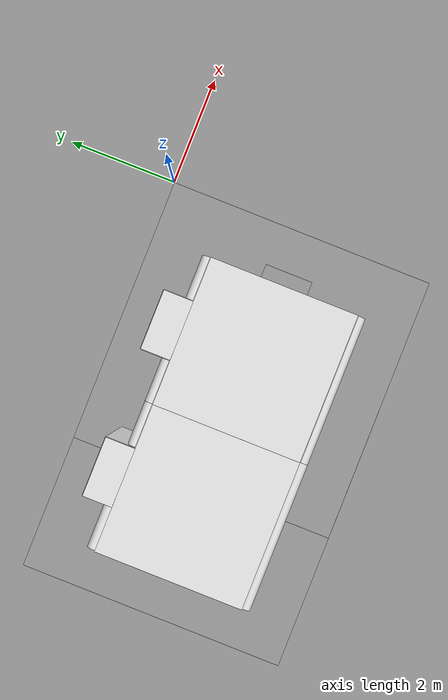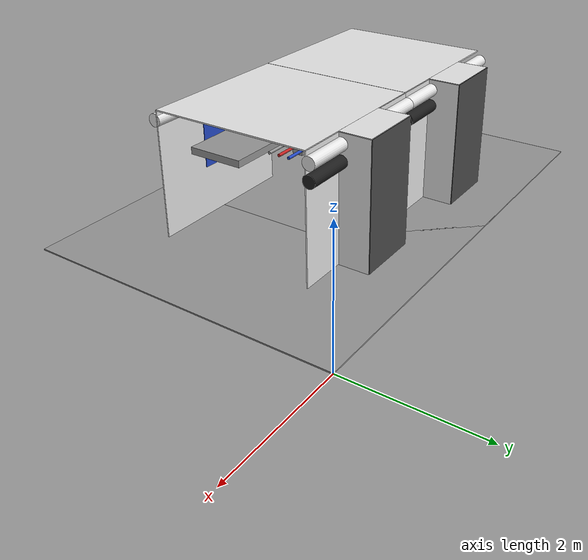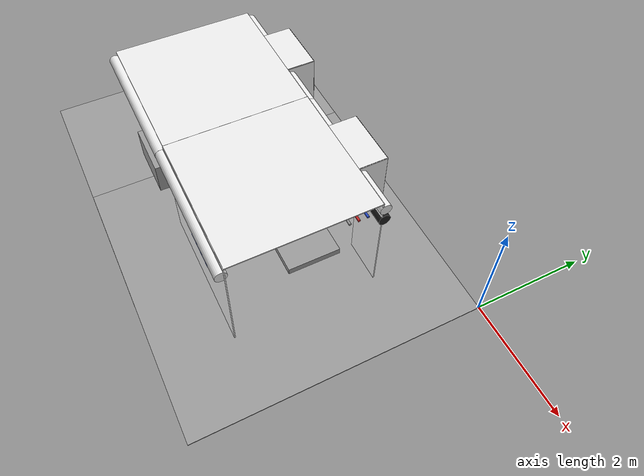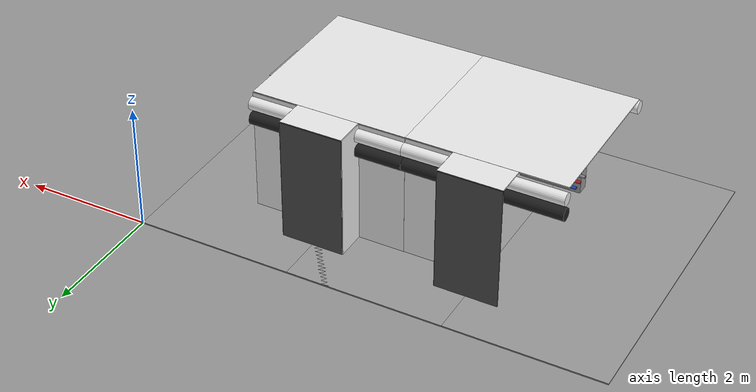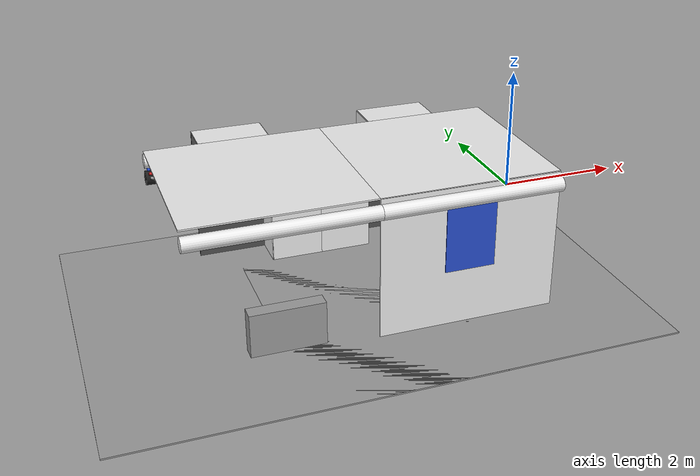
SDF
<sdf version="1.6">
 <world name="default">
  <model name="wall_left_-1_-1_0_1">
   <static>1</static>
   <pose>-2.5 -3.75 1.0 0.0 0.0 3.14</pose>
   <link name="link">
    <collision name="collision"><geometry><box><size>2.5 0.02 2.0</size></box></geometry></collision>
    <visual name="visual">
     <material>
      <script><name>Gazebo/White</name><uri>file://media/materials/scripts/gazebo.material</uri></script>
     </material>
     <geometry><box><size>2.5 0.02 2.0</size></box></geometry>
    </visual>
   </link>
  </model>
  <model name="wall_top_-1_-1_0_1">
   <static>1</static>
   <pose>-2.5 -2.5 2.0 1.57 0.0 1.57</pose>
   <link name="link">
    <collision name="collision"><geometry><box><size>2.5 0.02 2.5</size></box></geometry></collision>
    <visual name="visual">
     <material>
      <script><name>Gazebo/White</name><uri>file://media/materials/scripts/gazebo.material</uri></script>
     </material>
     <geometry><box><size>2.5 0.02 2.5</size></box></geometry>
    </visual>
   </link>
  </model>
  <model name="ceiling_1_-1_-1_0_1">
   <pose>-2.5 -2.5 1.7 0.0 0.0 1.57</pose>
   <link name="link_1">
    <visual name="visual">
     <geometry><box><size>0.8 1 0.1</size></box></geometry>
     <material>
      <script><uri>file://media/materials/scripts/gazebo.material</uri><name>Gazebo/Grey</name></script>
     </material>
    </visual>
    <collision name="collision"><geometry><box><size>0.8 1 0.1</size></box></geometry></collision>
   </link>
   <static>1</static>
  </model>
  <model name="ceiling_1_-1_-1_1_1">
   <pose>-1.5 -2.5 1.7 0.0 0.0 1.57</pose>
   <link name="link_1">
    <visual name="visual">
     <geometry><box><size>0.8 1 0.1</size></box></geometry>
     <material>
      <script><uri>file://media/materials/scripts/gazebo.material</uri><name>Gazebo/Grey</name></script>
     </material>
    </visual>
    <collision name="collision"><geometry><box><size>0.8 1 0.1</size></box></geometry></collision>
   </link>
   <static>1</static>
  </model>
  <model name="ceiling_1_-1_-1_2_1">
   <pose>-3.5 -2.5 1.7 0.0 0.0 1.57</pose>
   <link name="link_1">
    <visual name="visual">
     <geometry><box><size>0.8 1 0.1</size></box></geometry>
     <material>
      <script><uri>file://media/materials/scripts/gazebo.material</uri><name>Gazebo/Grey</name></script>
     </material>
    </visual>
    <collision name="collision"><geometry><box><size>0.8 1 0.1</size></box></geometry></collision>
   </link>
   <static>1</static>
  </model>
  <model name="white_pipe_left_-1_-1_0_1">
   <static>1</static>
   <pose>-2.5 -2.5 1.84 0.0 0.0 1.57</pose>
   <link name="link_0">
    <visual name="visual">
     <pose>-1.3 0 0 1.57 0 0</pose>
     <geometry><cylinder><radius>0.1</radius><length>2.5</length></cylinder></geometry>
     <material>
      <script><uri>file://media/materials/scripts/gazebo.material</uri><name>Gazebo/White</name></script>
     </material>
    </visual>
    <collision name="collision">
     <pose>-1.3 0 0 1.57 0 0</pose>
     <geometry><cylinder><radius>0.1</radius><length>2.5</length></cylinder></geometry>
    </collision>
   </link>
  </model>
  <model name="white_pipe_right_-1_-1_0_1">
   <static>1</static>
   <pose>-2.5 -2.5 1.84 0.0 0.0 1.57</pose>
   <link name="link_0">
    <visual name="visual">
     <pose>1.3 0 0 1.57 0 0</pose>
     <geometry><cylinder><radius>0.1</radius><length>2.5</length></cylinder></geometry>
     <material>
      <script><uri>file://media/materials/scripts/gazebo.material</uri><name>Gazebo/White</name></script>
     </material>
    </visual>
    <collision name="collision">
     <pose>1.3 0 0 1.57 0 0</pose>
     <geometry><cylinder><radius>0.1</radius><length>2.5</length></cylinder></geometry>
    </collision>
   </link>
  </model>
  <model name="black_pipe_right_-1_-1_0_1">
   <static>1</static>
   <pose>-2.5 -2.5 1.84 0.0 0.0 1.57</pose>
   <link name="link_0">
    <visual name="visual">
     <pose>1.3 0 -0.25 1.57 0 0</pose>
     <geometry><cylinder><radius>0.1</radius><length>2.5</length></cylinder></geometry>
     <material>
      <script><uri>file://media/materials/scripts/gazebo.material</uri><name>Gazebo/Black</name></script>
     </material>
    </visual>
    <collision name="collision">
     <pose>1.3 0 -0.25 1.57 0 0</pose>
     <geometry><cylinder><radius>0.1</radius><length>2.5</length></cylinder></geometry>
    </collision>
   </link>
  </model>
  <model name="grey_pipe_right_-1_-1_0_1">
   <static>1</static>
   <pose>-2.5 -2.5 1.84 0.0 0.0 1.57</pose>
   <link name="link_0">
    <visual name="visual">
     <pose>0.7 0 0 1.57 0 0</pose>
     <geometry><cylinder><radius>0.02</radius><length>2.5</length></cylinder></geometry>
     <material>
      <script><uri>file://media/materials/scripts/gazebo.material</uri><name>Gazebo/Grey</name></script>
     </material>
    </visual>
    <collision name="collision">
     <pose>0.7 0 0 1.57 0 0</pose>
     <geometry><cylinder><radius>0.02</radius><length>2.5</length></cylinder></geometry>
    </collision>
   </link>
  </model>
  <model name="red_pipe_right_-1_-1_0_1">
   <static>1</static>
   <pose>-2.5 -2.5 1.84 0.0 0.0 1.57</pose>
   <link name="link_0">
    <visual name="visual">
     <pose>0.85 0 0 1.57 0 0</pose>
     <geometry><cylinder><radius>0.02</radius><length>2.5</length></cylinder></geometry>
     <material>
      <script><uri>file://media/materials/scripts/gazebo.material</uri><name>Gazebo/Red</name></script>
     </material>
    </visual>
    <collision name="collision">
     <pose>0.85 0 0 1.57 0 0</pose>
     <geometry><cylinder><radius>0.02</radius><length>2.5</length></cylinder></geometry>
    </collision>
   </link>
  </model>
  <model name="blue_pipe_right_-1_-1_0_1">
   <static>1</static>
   <pose>-2.5 -2.5 1.84 0.0 0.0 1.57</pose>
   <link name="link_0">
    <visual name="visual">
     <pose>1 0 0 1.57 0 0</pose>
     <geometry><cylinder><radius>0.02</radius><length>2.5</length></cylinder></geometry>
     <material>
      <script><uri>file://media/materials/scripts/gazebo.material</uri><name>Gazebo/Blue</name></script>
     </material>
    </visual>
    <collision name="collision">
     <pose>1 0 0 1.57 0 0</pose>
     <geometry><cylinder><radius>0.02</radius><length>2.5</length></cylinder></geometry>
    </collision>
   </link>
  </model>
  <model name="panel_-1_-1_0_1">
   <static>1</static>
   <pose>-2.5 -3.75 1.3 0.0 0.0 1.57</pose>
   <link name="link">
    <collision name="collision"><geometry><box><size>0.04 0.7 1</size></box></geometry></collision>
    <visual name="visual">
     <material>
      <script><name>Gazebo/Blue</name><uri>file://media/materials/scripts/gazebo.material</uri></script>
     </material>
     <geometry><box><size>0.04 0.7 1</size></box></geometry>
    </visual>
   </link>
  </model>
  <model name="wall_right_front_left_-1_-1_0_1">
   <static>1</static>
   <pose>-3.375 -1.25 1.0 0.0 0.0 3.14</pose>
   <link name="link">
    <collision name="collision"><geometry><box><size>0.75 0.02 2.0</size></box></geometry></collision>
    <visual name="visual">
     <material>
      <script><name>Gazebo/White</name><uri>file://media/materials/scripts/gazebo.material</uri></script>
     </material>
     <geometry><box><size>0.75 0.02 2.0</size></box></geometry>
    </visual>
   </link>
  </model>
  <model name="wall_right_front_right_-1_-1_0_1">
   <static>1</static>
   <pose>-1.625 -1.25 1.0 0.0 0.0 3.14</pose>
   <link name="link">
    <collision name="collision"><geometry><box><size>0.75 0.02 2.0</size></box></geometry></collision>
    <visual name="visual">
     <material>
      <script><name>Gazebo/White</name><uri>file://media/materials/scripts/gazebo.material</uri></script>
     </material>
     <geometry><box><size>0.75 0.02 2.0</size></box></geometry>
    </visual>
   </link>
  </model>
  <model name="wall_right_front_up_-1_-1_0_1">
   <static>1</static>
   <pose>-2.5 -1.25 2.0 0.0 0.0 3.14</pose>
   <link name="link">
    <collision name="collision"><geometry><box><size>1.0 0.02 0.001</size></box></geometry></collision>
    <visual name="visual">
     <material>
      <script><name>Gazebo/White</name><uri>file://media/materials/scripts/gazebo.material</uri></script>
     </material>
     <geometry><box><size>1.0 0.02 0.001</size></box></geometry>
    </visual>
   </link>
  </model>
  <model name="wall_right_inside_back_-1_-1_0_1">
   <static>1</static>
   <pose>-2.5 -0.75 1.0 0.0 0.0 3.14</pose>
   <link name="link">
    <collision name="collision"><geometry><box><size>1 0.02 2</size></box></geometry></collision>
    <visual name="visual">
     <material>
      <script><name>Gazebo/DarkGrey</name><uri>file://media/materials/scripts/gazebo.material</uri></script>
     </material>
     <geometry><box><size>1 0.02 2</size></box></geometry>
    </visual>
   </link>
  </model>
  <model name="wall_right_inside_left_-1_-1_0_1">
   <static>1</static>
   <pose>-3.0 -1.0 1.0 0.0 0.0 1.57</pose>
   <link name="link">
    <collision name="collision"><geometry><box><size>0.5 0.02 2</size></box></geometry></collision>
    <visual name="visual">
     <material>
      <script><name>Gazebo/White</name><uri>file://media/materials/scripts/gazebo.material</uri></script>
     </material>
     <geometry><box><size>0.5 0.02 2</size></box></geometry>
    </visual>
   </link>
  </model>
  <model name="wall_right_inside_right_-1_-1_0_1">
   <static>1</static>
   <pose>-2.0 -1.0 1.0 0.0 0.0 1.57</pose>
   <link name="link">
    <collision name="collision"><geometry><box><size>0.5 0.02 2</size></box></geometry></collision>
    <visual name="visual">
     <material>
      <script><name>Gazebo/White</name><uri>file://media/materials/scripts/gazebo.material</uri></script>
     </material>
     <geometry><box><size>0.5 0.02 2</size></box></geometry>
    </visual>
   </link>
  </model>
  <model name="wall_right_inside_top_-1_-1_0_1">
   <static>1</static>
   <pose>-2.5 -1.0 2.0 1.57 0.0 3.14</pose>
   <link name="link">
    <collision name="collision"><geometry><box><size>1 0.02 0.5</size></box></geometry></collision>
    <visual name="visual">
     <material>
      <script><name>Gazebo/White</name><uri>file://media/materials/scripts/gazebo.material</uri></script>
     </material>
     <geometry><box><size>1 0.02 0.5</size></box></geometry>
    </visual>
   </link>
  </model>
  <model name="wall_bottom_-1_-1_0_1">
   <static>1</static>
   <pose>-2.5 -2.5 0.0 0.0 0.0 1.57</pose>
   <link name="link">
    <collision name="collision"><geometry><box><size>5.0 5.0 0.02</size></box></geometry></collision>
    <visual name="visual">
     <material>
      <script><name>Gazebo/Grey</name><uri>file://media/materials/scripts/gazebo.material</uri></script>
     </material>
     <geometry><box><size>5.0 5.0 0.02</size></box></geometry>
    </visual>
   </link>
  </model>
  <model name="wall_top_-2_-1_0_1">
   <static>1</static>
   <pose>-5.0 -2.5 2.0 1.57 0.0 1.57</pose>
   <link name="link">
    <collision name="collision"><geometry><box><size>2.5 0.02 2.5</size></box></geometry></collision>
    <visual name="visual">
     <material>
      <script><name>Gazebo/White</name><uri>file://media/materials/scripts/gazebo.material</uri></script>
     </material>
     <geometry><box><size>2.5 0.02 2.5</size></box></geometry>
    </visual>
   </link>
  </model>
  <model name="ceiling_1_-2_-1_0_1">
   <pose>-5.0 -2.5 1.7 0.0 0.0 1.57</pose>
   <link name="link_1">
    <visual name="visual">
     <geometry><box><size>0.8 1 0.1</size></box></geometry>
     <material>
      <script><uri>file://media/materials/scripts/gazebo.material</uri><name>Gazebo/Grey</name></script>
     </material>
    </visual>
    <collision name="collision"><geometry><box><size>0.8 1 0.1</size></box></geometry></collision>
   </link>
   <static>1</static>
  </model>
  <model name="ceiling_1_-2_-1_1_1">
   <pose>-4.0 -2.5 1.7 0.0 0.0 1.57</pose>
   <link name="link_1">
    <visual name="visual">
     <geometry><box><size>0.8 1 0.1</size></box></geometry>
     <material>
      <script><uri>file://media/materials/scripts/gazebo.material</uri><name>Gazebo/Grey</name></script>
     </material>
    </visual>
    <collision name="collision"><geometry><box><size>0.8 1 0.1</size></box></geometry></collision>
   </link>
   <static>1</static>
  </model>
  <model name="white_pipe_left_-2_-1_0_1">
   <static>1</static>
   <pose>-5.0 -2.5 1.84 0.0 0.0 1.57</pose>
   <link name="link_0">
    <visual name="visual">
     <pose>-1.3 0 0 1.57 0 0</pose>
     <geometry><cylinder><radius>0.1</radius><length>2.5</length></cylinder></geometry>
     <material>
      <script><uri>file://media/materials/scripts/gazebo.material</uri><name>Gazebo/White</name></script>
     </material>
    </visual>
    <collision name="collision">
     <pose>-1.3 0 0 1.57 0 0</pose>
     <geometry><cylinder><radius>0.1</radius><length>2.5</length></cylinder></geometry>
    </collision>
   </link>
  </model>
  <model name="white_pipe_right_-2_-1_0_1">
   <static>1</static>
   <pose>-5.0 -2.5 1.84 0.0 0.0 1.57</pose>
   <link name="link_0">
    <visual name="visual">
     <pose>1.3 0 0 1.57 0 0</pose>
     <geometry><cylinder><radius>0.1</radius><length>2.5</length></cylinder></geometry>
     <material>
      <script><uri>file://media/materials/scripts/gazebo.material</uri><name>Gazebo/White</name></script>
     </material>
    </visual>
    <collision name="collision">
     <pose>1.3 0 0 1.57 0 0</pose>
     <geometry><cylinder><radius>0.1</radius><length>2.5</length></cylinder></geometry>
    </collision>
   </link>
  </model>
  <model name="black_pipe_right_-2_-1_0_1">
   <static>1</static>
   <pose>-5.0 -2.5 1.84 0.0 0.0 1.57</pose>
   <link name="link_0">
    <visual name="visual">
     <pose>1.3 0 -0.25 1.57 0 0</pose>
     <geometry><cylinder><radius>0.1</radius><length>2.5</length></cylinder></geometry>
     <material>
      <script><uri>file://media/materials/scripts/gazebo.material</uri><name>Gazebo/Black</name></script>
     </material>
    </visual>
    <collision name="collision">
     <pose>1.3 0 -0.25 1.57 0 0</pose>
     <geometry><cylinder><radius>0.1</radius><length>2.5</length></cylinder></geometry>
    </collision>
   </link>
  </model>
  <model name="grey_pipe_right_-2_-1_0_1">
   <static>1</static>
   <pose>-5.0 -2.5 1.84 0.0 0.0 1.57</pose>
   <link name="link_0">
    <visual name="visual">
     <pose>0.7 0 0 1.57 0 0</pose>
     <geometry><cylinder><radius>0.02</radius><length>2.5</length></cylinder></geometry>
     <material>
      <script><uri>file://media/materials/scripts/gazebo.material</uri><name>Gazebo/Grey</name></script>
     </material>
    </visual>
    <collision name="collision">
     <pose>0.7 0 0 1.57 0 0</pose>
     <geometry><cylinder><radius>0.02</radius><length>2.5</length></cylinder></geometry>
    </collision>
   </link>
  </model>
  <model name="red_pipe_right_-2_-1_0_1">
   <static>1</static>
   <pose>-5.0 -2.5 1.84 0.0 0.0 1.57</pose>
   <link name="link_0">
    <visual name="visual">
     <pose>0.85 0 0 1.57 0 0</pose>
     <geometry><cylinder><radius>0.02</radius><length>2.5</length></cylinder></geometry>
     <material>
      <script><uri>file://media/materials/scripts/gazebo.material</uri><name>Gazebo/Red</name></script>
     </material>
    </visual>
    <collision name="collision">
     <pose>0.85 0 0 1.57 0 0</pose>
     <geometry><cylinder><radius>0.02</radius><length>2.5</length></cylinder></geometry>
    </collision>
   </link>
  </model>
  <model name="blue_pipe_right_-2_-1_0_1">
   <static>1</static>
   <pose>-5.0 -2.5 1.84 0.0 0.0 1.57</pose>
   <link name="link_0">
    <visual name="visual">
     <pose>1 0 0 1.57 0 0</pose>
     <geometry><cylinder><radius>0.02</radius><length>2.5</length></cylinder></geometry>
     <material>
      <script><uri>file://media/materials/scripts/gazebo.material</uri><name>Gazebo/Blue</name></script>
     </material>
    </visual>
    <collision name="collision">
     <pose>1 0 0 1.57 0 0</pose>
     <geometry><cylinder><radius>0.02</radius><length>2.5</length></cylinder></geometry>
    </collision>
   </link>
  </model>
  <model name="wall_bottom_-2_-1_0_1">
   <static>1</static>
   <pose>-5.0 -2.5 0.0 0.0 0.0 1.57</pose>
   <link name="link">
    <collision name="collision"><geometry><box><size>5.0 5.0 0.02</size></box></geometry></collision>
    <visual name="visual">
     <material>
      <script><name>Gazebo/Grey</name><uri>file://media/materials/scripts/gazebo.material</uri></script>
     </material>
     <geometry><box><size>5.0 5.0 0.02</size></box></geometry>
    </visual>
   </link>
  </model>
  <model name="wall_right_front_right_-2_-1_0_1">
   <static>1</static>
   <pose>-4.125 -1.25 1.0 0.0 0.0 3.14</pose>
   <link name="link">
    <collision name="collision"><geometry><box><size>0.75 0.02 2.0</size></box></geometry></collision>
    <visual name="visual">
     <material>
      <script><name>Gazebo/White</name><uri>file://media/materials/scripts/gazebo.material</uri></script>
     </material>
     <geometry><box><size>0.75 0.02 2.0</size></box></geometry>
    </visual>
   </link>
  </model>
  <model name="wall_right_front_up_-2_-1_0_1">
   <static>1</static>
   <pose>-5.0 -1.25 2.0 0.0 0.0 3.14</pose>
   <link name="link">
    <collision name="collision"><geometry><box><size>1.0 0.02 0.001</size></box></geometry></collision>
    <visual name="visual">
     <material>
      <script><name>Gazebo/White</name><uri>file://media/materials/scripts/gazebo.material</uri></script>
     </material>
     <geometry><box><size>1.0 0.02 0.001</size></box></geometry>
    </visual>
   </link>
  </model>
  <model name="wall_right_inside_back_-2_-1_0_1">
   <static>1</static>
   <pose>-5.0 -0.75 1.0 0.0 0.0 3.14</pose>
   <link name="link">
    <collision name="collision"><geometry><box><size>1 0.02 2</size></box></geometry></collision>
    <visual name="visual">
     <material>
      <script><name>Gazebo/DarkGrey</name><uri>file://media/materials/scripts/gazebo.material</uri></script>
     </material>
     <geometry><box><size>1 0.02 2</size></box></geometry>
    </visual>
   </link>
  </model>
  <model name="wall_right_inside_right_-2_-1_0_1">
   <static>1</static>
   <pose>-4.5 -1.0 1.0 0.0 0.0 1.57</pose>
   <link name="link">
    <collision name="collision"><geometry><box><size>0.5 0.02 2</size></box></geometry></collision>
    <visual name="visual">
     <material>
      <script><name>Gazebo/White</name><uri>file://media/materials/scripts/gazebo.material</uri></script>
     </material>
     <geometry><box><size>0.5 0.02 2</size></box></geometry>
    </visual>
   </link>
  </model>
  <model name="wall_right_inside_top_-2_-1_0_1">
   <static>1</static>
   <pose>-5.0 -1.0 2.0 1.57 0.0 3.14</pose>
   <link name="link">
    <collision name="collision"><geometry><box><size>1 0.02 0.5</size></box></geometry></collision>
    <visual name="visual">
     <material>
      <script><name>Gazebo/White</name><uri>file://media/materials/scripts/gazebo.material</uri></script>
     </material>
     <geometry><box><size>1 0.02 0.5</size></box></geometry>
    </visual>
   </link>
  </model>
  <model name="panel_-2_-1_0_1">
   <static>1</static>
   <pose>-5.0 -3.75 0.44 0.0 0.0 1.57</pose>
   <link name="link">
    <collision name="collision"><geometry><box><size>0.2 1 0.6</size></box></geometry></collision>
    <visual name="visual">
     <material>
      <script><name>Gazebo/Grey</name><uri>file://media/materials/scripts/gazebo.material</uri></script>
     </material>
     <geometry><box><size>0.2 1 0.6</size></box></geometry>
    </visual>
   </link>
  </model>
 </world>
</sdf>
